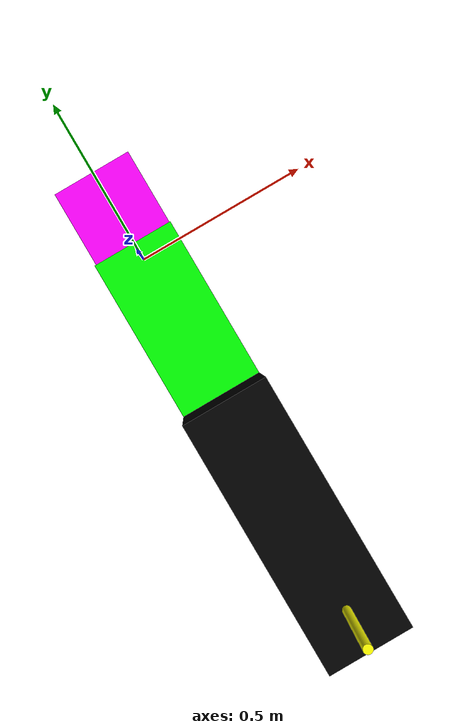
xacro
<?xml version="1.0"?>
<robot name="scara">
    <material name="yellow">
        <color rgba="1.0 1.0 0 1.0"/>
    </material>
    <material name="black">
        <color rgba="0 0 0 1.0"/>
    </material>
    <material name="green">
        <color rgba="0 1.0 0 1.0"/>
    </material>
    <material name="pink">
        <color rgba="1.0 0 1.0 1.0"/>
    </material>

    <!-- base link -->
    <link name="base_link">
        <visual>
            <origin xyz="0 0 0.3" rpy="0 0 0"/>
            <geometry>
                <box size="0.2 0.4 0.6"/>
            </geometry>
            <material name="pink"/>
        </visual>
    </link>

    <!-- link1 -->
    <link name="link1">
        <visual>
            <origin xyz="0 -0.2 0.05" rpy="0 0 0"/>
            <geometry>
                <box size="0.2 0.6 0.1"/>
            </geometry>
            <material name="green"/>
        </visual>
    </link>

    <!-- joint: toggle link -->
    <joint name="joint0" type="revolute">
        <origin xyz="0 -0.1 0.6" rpy="0 0 0"/>
        <axis xyz="0 0 1"/>
        <parent link="base_link"/>
        <child link="link1"/>

        <limit effort="30" velocity="1.0" lower="-2.5" upper="2.5"/>
    </joint>

    <!-- link2 -->
    <link name="link2">
        <visual>
            <origin xyz="0 -0.2 0.15" rpy="0 0 0"/>
            <geometry>
                <box size="0.2 0.6 0.3"/>
            </geometry>
            <material name="black"/>
        </visual>
    </link>

    <!-- joint: toggle link -->
    <joint name="joint1" type="revolute">
        <origin xyz="0 -0.4 0.1" rpy="0 0 0"/>
        <axis xyz="0 0 1"/>
        <parent link="link1"/>
        <child link="link2"/>

        <limit effort="30" velocity="1.0" lower="-2.5" upper="2.5"/>
    </joint>

    <!-- link3 -->
    <link name="link3">
        <visual>
            <origin xyz="0 0 0" rpy="0 0 0"/>
            <geometry>
                <cylinder length="1" radius="0.01"/>
            </geometry>
            <material name="yellow"/>
        </visual>
    </link>

    <!-- joint: toggle link -->
    <joint name="joint2" type="prismatic">
        <origin xyz="0 -0.4 0.15" rpy="0 0 0"/>
        <axis xyz="0 0 1"/>
        <parent link="link2"/>
        <child link="link3"/>

        <limit effort="30" velocity="1.0" lower="-0.35" upper="0.35"/>
    </joint>

</robot>
